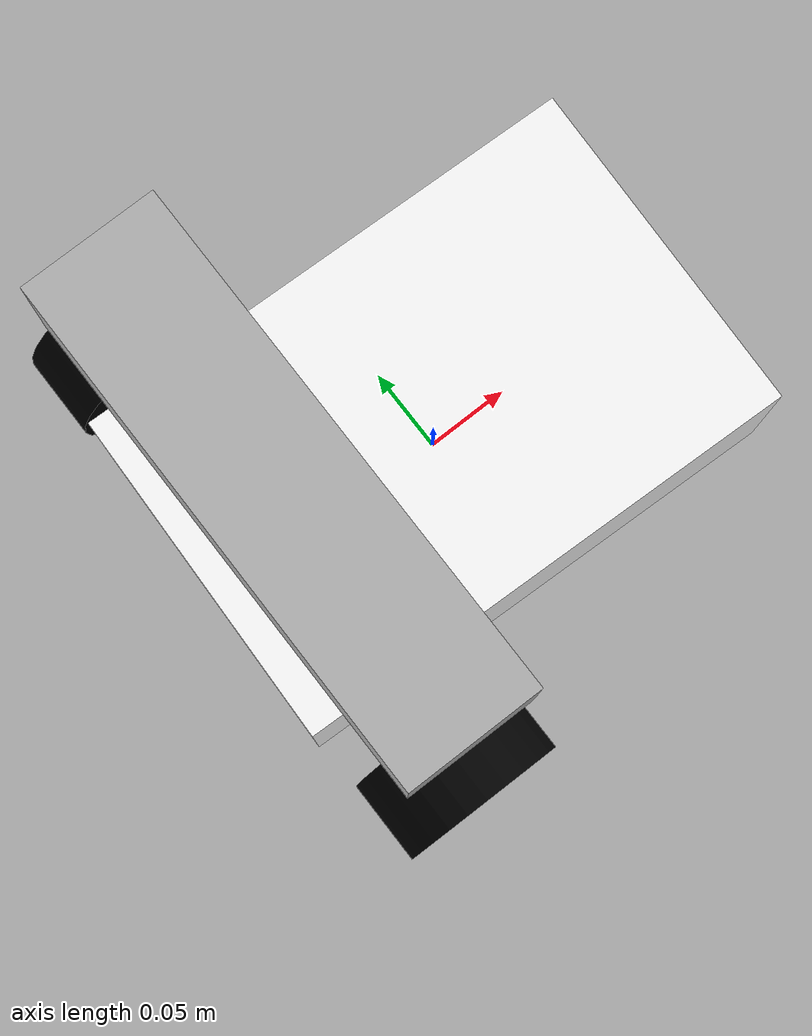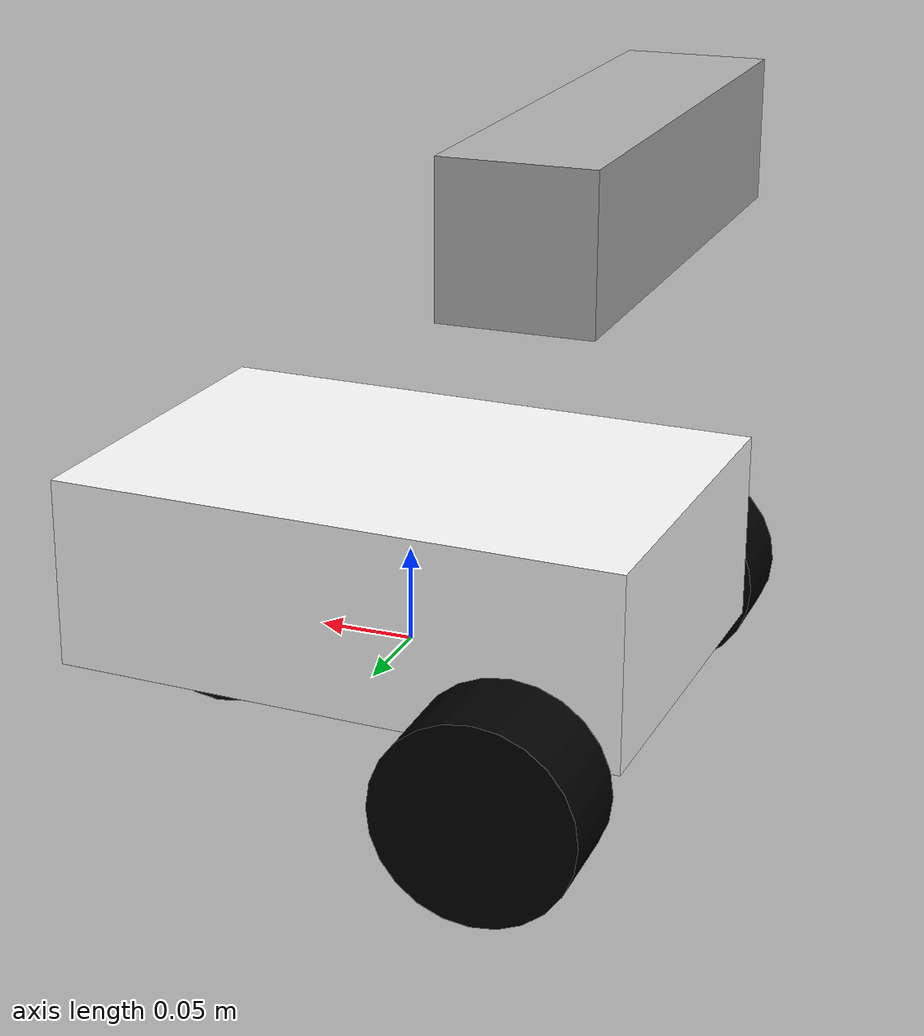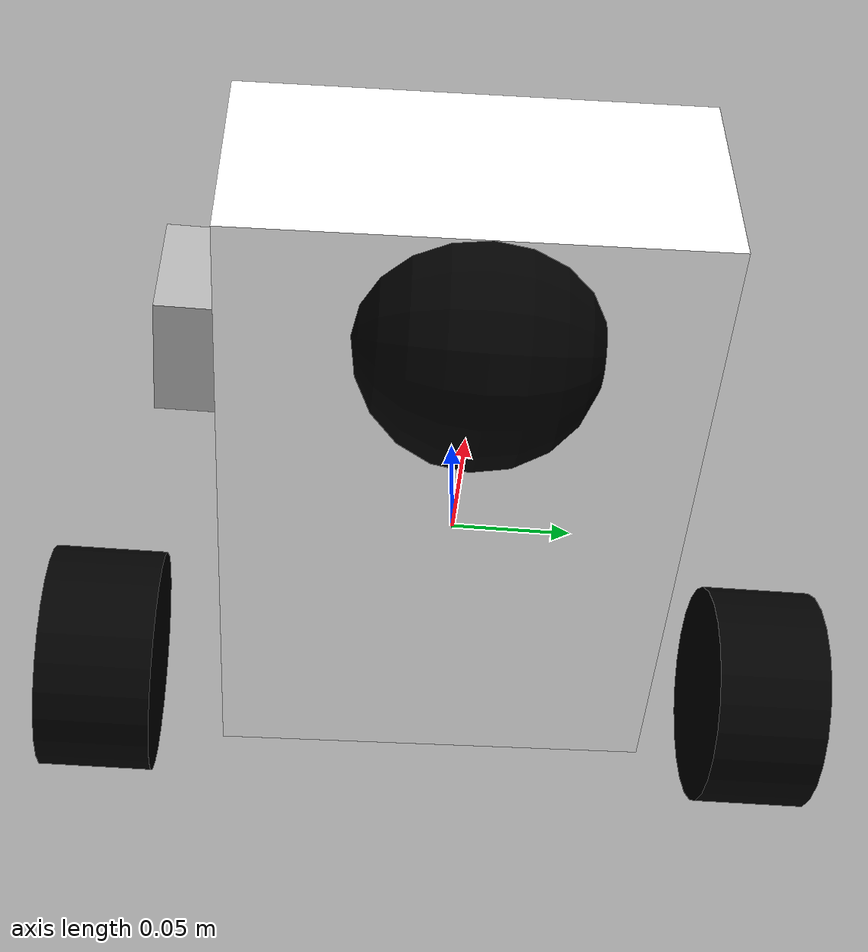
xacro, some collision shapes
<?xml version="1.0"?>

<robot xmlns:xacro="http://www.ros.org/wiki/xacro"
 	xmlns:sensor="http://playerstage.sourceforge.net/gazebo/xmlschema/#sensor"
    	xmlns:controller="http://playerstage.sourceforge.net/gazebo/xmlschema/#controller"
    	xmlns:interface="http://playerstage.sourceforge.net/gazebo/xmlschema/#interface"
	name="robot1_xacro">

	<xacro:property name="length_wheel" value="0.05" />
	<xacro:property name="radius_wheel" value="0.05" />
	<xacro:property name="camera_link" value="0.05" />
  <xacro:property name="M_PI" value="3.1415926535897931" />
	<xacro:macro name="default_inertial" params="mass">
               <inertial>
                       <mass value="${mass}" />
                       <inertia ixx="1.0" ixy="0.0" ixz="0.0"
                                iyy="1.0" iyz="0.0"
                                izz="1.0" />
               </inertial>
	</xacro:macro>
  <xacro:include filename="saturn_property.urdf.xacro" />
	<link name="base_footprint">
   		<visual>
			<geometry>
      				<box size="0.001 0.001 0.001"/>
     			</geometry>
			<origin rpy="0 0 0" xyz="0 0 0"/>
   		</visual>
 	</link>
 	<xacro:include filename="robot1.gazebo" />

	<gazebo reference="base_footprint">
		<material>Gazebo/Green</material>
		<turnGravityOff>false</turnGravityOff>
	</gazebo>

	<joint name="base_footprint_joint" type="fixed">
		<origin xyz="0 0 0" />
		<parent link="base_footprint" />
		<child link="base_link" />
	</joint>

	<link name="base_link">
   		<visual>
			<geometry>
      				<box size="0.2 .3 .1"/>
     			</geometry>
			<origin rpy="0 0 1.54" xyz="0 0 0.05"/>
			<material name="white">
				<color rgba="1 1 1 1"/>
			</material>
   		</visual>
		<collision>
			<geometry>
       				<box size="0.2 .3 0.1"/>
			</geometry>
		</collision>
		<xacro:default_inertial mass="10"/>
 	</link>

 	<link name="wheel_left">
   		<visual>
     			<geometry>
       				<cylinder length="${length_wheel}" radius="${radius_wheel}"/>
     			</geometry>
			<origin rpy="0 0 0" xyz="0 0 0"/>
   			<material name="black">
				<color rgba="0 0 0 1"/>
			</material>
		</visual>
		<collision>
			<geometry>
       				<cylinder length="${length_wheel}" radius="${radius_wheel}"/>
			</geometry>
		</collision>
		<xacro:default_inertial mass="1"/>
 	</link>

 	<link name="wheel_right">
   		<visual>
     			<geometry>
       				<cylinder length="${length_wheel}" radius="${radius_wheel}"/>
     			</geometry>
			<origin rpy="0 0 0" xyz="0 0 0"/>
   			<material name="black"/>
   		</visual>
		<collision>
			<geometry>
       				<cylinder length="${length_wheel}" radius="${radius_wheel}"/>
			</geometry>
		</collision>
		<xacro:default_inertial mass="1"/>

 	</link>

 	<link name="caster_wheel">
   		<visual>
     			<geometry>
       				<sphere radius="${radius_wheel}"/>
     			</geometry>

			<origin rpy="0 0 0" xyz="0 0 0"/>
   			<material name="black"/>
   		</visual>
		<collision>
			<geometry>
       				<sphere radius="${radius_wheel}"/>
			</geometry>
		</collision>
		<xacro:default_inertial mass="1"/>
 	</link>

 <joint name="base_to_wheel_left" type="continuous">
   <parent link="base_link"/>
   <child link="wheel_left"/>
   <origin rpy="-1.5707 0 0" xyz="-0.1 0.15 0"/>
   <axis xyz="0 0 1" />
 </joint>

 <joint name="base_to_wheel_right" type="continuous">
   <axis xyz="0 0 1" />
   <anchor xyz="0 0 0" />
   <limit effort="100" velocity="100" />
   <parent link="base_link"/>
   <child link="wheel_right"/>
   <origin rpy="-1.5707 0 0" xyz="-0.1 -0.15 0"/>
</joint>

 <joint name="base_to_caster_wheel" type="continuous">
   <parent link="base_link"/>
   <axis xyz="0 0 1" />
   <child link="caster_wheel"/>
   <origin rpy="-1.5707 0 0" xyz="0.1 0 0"/>
 </joint>

  <!-- Camera -->
  <xacro:property name="kinect_cam_py" value="-0.0125"/>
  <!-- Parameterised in part by the values in turtlebot_properties.urdf.xacro -->
  <xacro:macro name="sensor_kinect" params="parent" />
    <joint name="camera_joint" type="fixed">
      <origin xyz="${cam_px} ${kinect_cam_py} ${cam_pz}" rpy="${cam_or} ${cam_op} ${cam_oy}"/>
      <parent link="base_link"/>
      <child link="camera_link" />
    </joint>

    <joint name="camera_rgb_optical_joint" type="fixed">
      <origin xyz="0 0 0" rpy="${-M_PI/2} 0 ${-M_PI/2}" />
      <parent link="camera_rgb_frame" />
      <child link="camera_rgb_optical_frame" />
    </joint>
    <link name="camera_rgb_optical_frame"/>

    <joint name="camera_rgb_joint" type="fixed">
      <origin xyz="-0.031 ${-kinect_cam_py} -0.016" rpy="0 0 0"/>
      <parent link="camera_link"/>
      <child link="camera_rgb_frame"/>
    </joint>
    <link name="camera_rgb_frame"/>
      <link name="camera_link">
      <visual>
       <origin xyz="0 0 0" rpy="0 0 ${M_PI/2}"/>
        <geometry>
         <mesh filename="package://turtlebot_description/meshes/sensors/kinect.dae"/>
        </geometry>
      </visual>
  	  <collision>
        <origin xyz="0.0 0.0 0.0" rpy="0 0 0"/>
  	    <geometry>
  	      <box size="0.07271 0.27794 0.073"/>
  	    </geometry>
  	  </collision>
      <inertial>
        <mass value="0.564" />
        <origin xyz="0 0 0" />
        <inertia ixx="0.003881243" ixy="0.0" ixz="0.0"
                 iyy="0.000498940" iyz="0.0"
                 izz="0.003879257" />
      </inertial>
    </link>

	<joint name="camera_depth_joint" type="fixed">
	  <origin xyz="0 ${2 * -kinect_cam_py} 0" rpy="0 0 0" />
	  <parent link="camera_link" />
	  <child link="camera_depth_frame" />
	</joint>
	<link name="camera_depth_frame"/>

	<joint name="camera_depth_optical_joint" type="fixed">
	  <origin xyz="0 0 0" rpy="${-M_PI/2} 0 ${-M_PI/2}" />
	  <parent link="camera_depth_frame" />
	  <child link="camera_depth_optical_frame" />
	</joint>
	<link name="camera_depth_optical_frame"/>

  <!-- Drive controller -->
<gazebo>
  <plugin name="differential_drive_controller" filename="libgazebo_ros_diff_drive.so">
    <updateRate>100.0</updateRate>
    <robotNamespace>/</robotNamespace>
    <leftJoint>base_to_wheel_left</leftJoint>
    <rightJoint>base_to_wheel_right</rightJoint>
    <wheelSeparation>4</wheelSeparation>
    <wheelDiameter>0.1</wheelDiameter>
    <robotBaseFrame>base_footprint</robotBaseFrame>
    <wheelTorque>5</wheelTorque>
    <topicName>cmd_vel</topicName>
    <commandTopic>cmd_vel</commandTopic>
    <odometryTopic>odom</odometryTopic>
    <odometryFrame>odom</odometryFrame>
    <broadcastTF>1</broadcastTF>
  </plugin>
</gazebo>

</robot>

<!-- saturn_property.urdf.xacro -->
<robot>
  <!--
    These properties must be observed by any machine
    that wants to be defined as a turtlebot. Refer
    to the REP for more details.

    http://www.ros.org/reps/rep-0119.html
   -->

	<property name="cam_px" value="-0.1" />
	<property name="cam_pz" value="0.25" />
	<property name="cam_or" value="0" />
	<property name="cam_op" value="0" />
	<property name="cam_oy" value="0" />
</robot>
